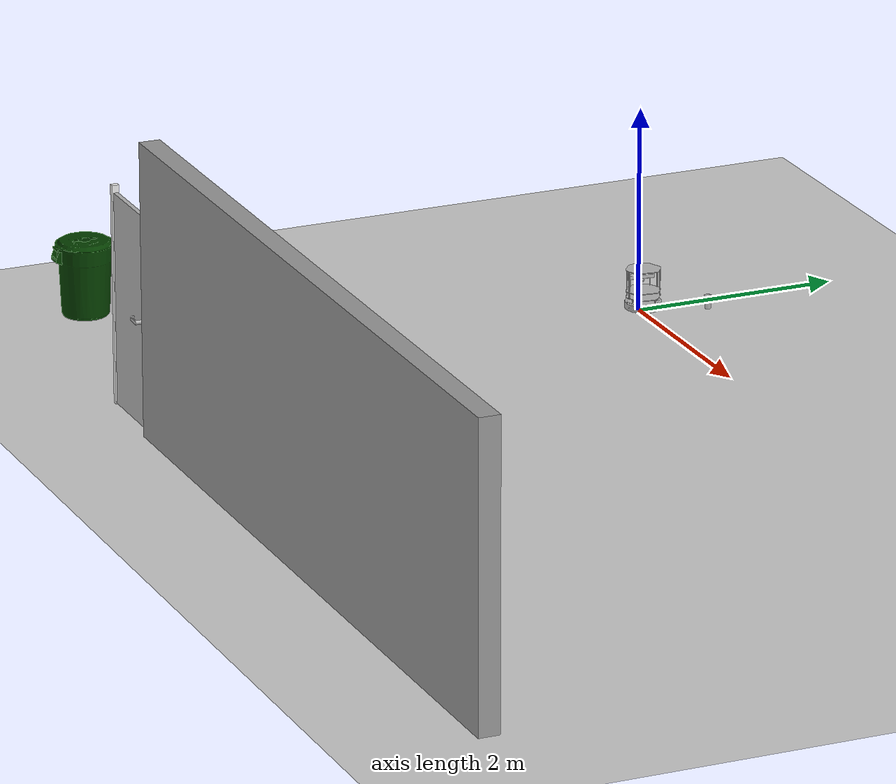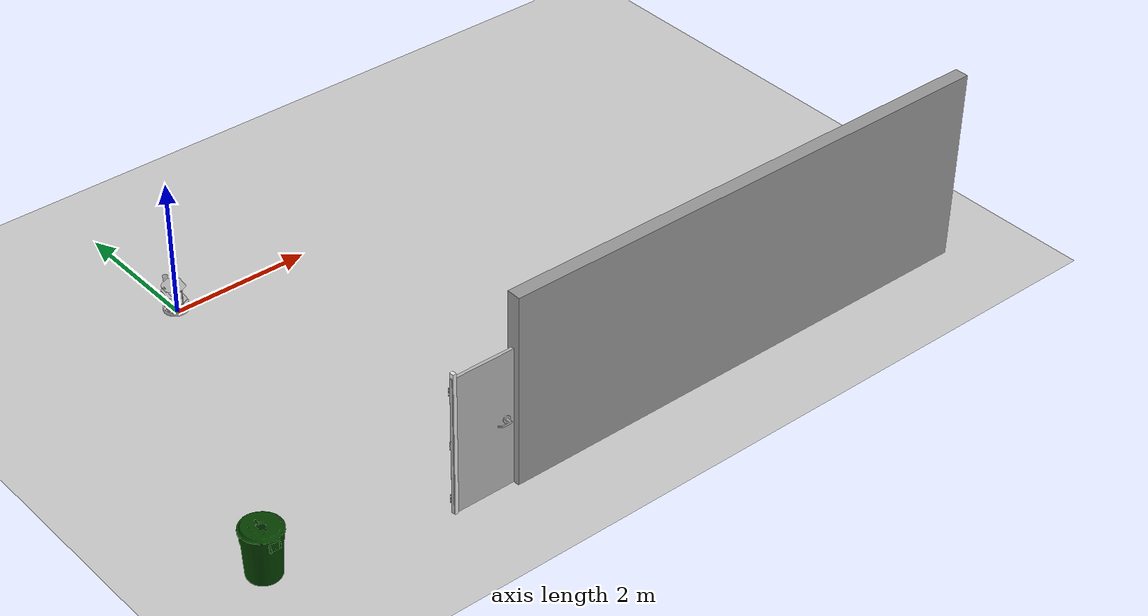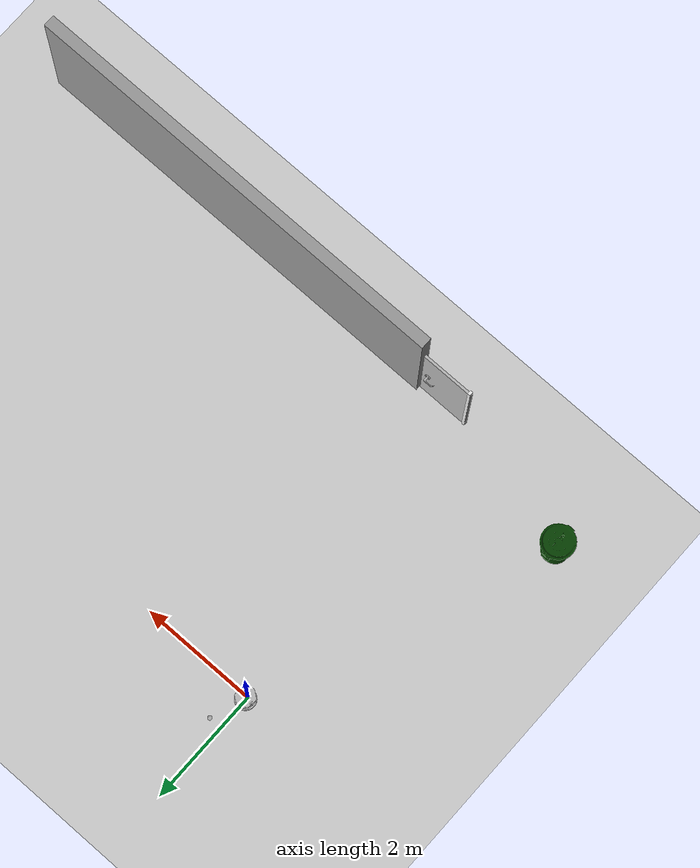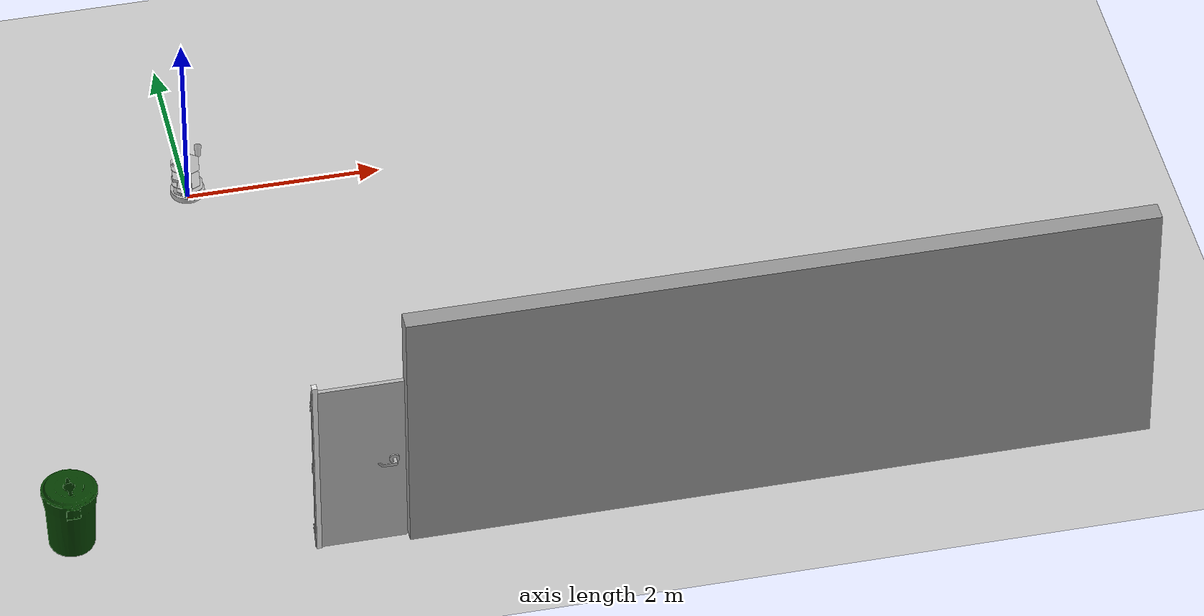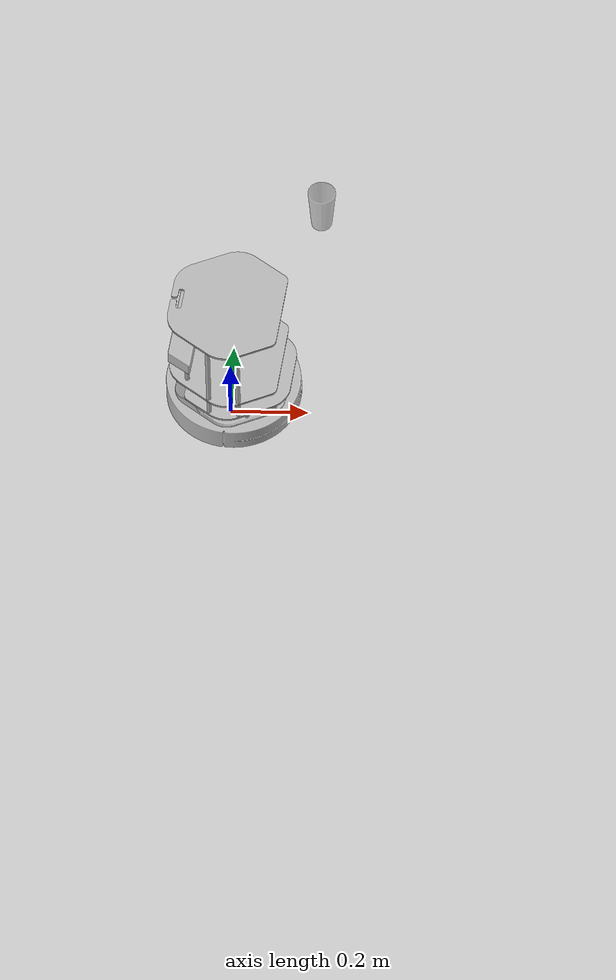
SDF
<sdf version="1.6">
 <world name="default">
  <light name="sun" type="directional">
   <pose>0 0 10 0 -0 0</pose>
   <diffuse>0.8 0.8 0.8 1</diffuse>
   <specular>0.1 0.1 0.1 1</specular>
   <attenuation>
    <range>1000</range>
    <constant>0.9</constant>
    <linear>0.01</linear>
    <quadratic>0.001</quadratic>
   </attenuation>
   <direction>-0.5 0.5 -1</direction>
  </light>
  <model name="ground_plane">
   <static>1</static>
   <link name="link">
    <collision name="collision">
     <geometry><plane><normal>0 0 1</normal><size>100 100</size></plane></geometry>
     <surface><friction><ode><mu>100</mu><mu2>50</mu2></ode></friction></surface>
    </collision>
    <visual name="visual">
     <cast_shadows>0</cast_shadows>
     <geometry><plane><normal>0 0 1</normal><size>100 100</size></plane></geometry>
     <material>
      <script><uri>file://media/materials/scripts/gazebo.material</uri><name>Gazebo/Grey</name></script>
     </material>
    </visual>
   </link>
  </model>
  <physics name="default_physics" default="0" type="ode">
   <max_step_size>0.01</max_step_size>
   <real_time_factor>1</real_time_factor>
   <real_time_update_rate>100</real_time_update_rate>
  </physics>
  <gravity>0 0 -9.8</gravity>
  <magnetic_field>6e-06 2.3e-05 -4.2e-05</magnetic_field>
  <atmosphere type="adiabatic"/>
  <scene><ambient>0.4 0.4 0.4 1</ambient><background>0.7 0.7 0.7 1</background><shadows>1</shadows></scene>
  <spherical_coordinates>
   <surface_model>EARTH_WGS84</surface_model>
   <latitude_deg>0</latitude_deg>
   <longitude_deg>0</longitude_deg>
   <elevation>0</elevation>
   <heading_deg>0</heading_deg>
  </spherical_coordinates>
  <model name="mobile_base">
   <link name="base_footprint">
    <inertial>
     <pose>-0.009496 1.3e-05 0.135573 0 -0 0</pose>
     <mass>4.9213</mass>
     <inertia>
      <ixx>0.142129</ixx>
      <ixy>-4.09257e-06</ixy>
      <ixz>0.0154899</ixz>
      <iyy>0.140784</iyy>
      <iyz>6.52071e-06</iyz>
      <izz>0.0801071</izz>
     </inertia>
    </inertial>
    <collision name="base_footprint_fixed_joint_lump__base_collision">
     <pose>0 0 0.06969 0 -0 0</pose>
     <geometry><cylinder><length>0.10938</length><radius>0.178</radius></cylinder></geometry>
    </collision>
    <collision name="base_footprint_fixed_joint_lump__camera_link_collision_1">
     <pose>-0.118 0 0.2812 0 -0 0</pose>
     <geometry><box><size>0.07271 0.27794 0.073</size></box></geometry>
    </collision>
    <collision name="base_footprint_fixed_joint_lump__caster_back_link_collision_2">
     <pose>-0.135 0 0.0192 -1.5708 0 0</pose>
     <geometry><cylinder><length>0.0176</length><radius>0.017</radius></cylinder></geometry>
     <surface>
      <contact><ode><kp>1e+06</kp><kd>100</kd><max_vel>1</max_vel><min_depth>0.001</min_depth></ode></contact>
      <friction><ode><mu>0</mu><mu2>0</mu2></ode></friction>
     </surface>
    </collision>
    <collision name="base_footprint_fixed_joint_lump__caster_front_link_collision_3">
     <pose>0.115 0 0.0172 -1.5708 0 0</pose>
     <geometry><cylinder><length>0.0176</length><radius>0.017</radius></cylinder></geometry>
     <surface>
      <contact><ode><kp>1e+06</kp><kd>100</kd><max_vel>1</max_vel><min_depth>0.001</min_depth></ode></contact>
      <friction><ode><mu>0</mu><mu2>0</mu2></ode></friction>
     </surface>
    </collision>
    <collision name="base_footprint_fixed_joint_lump__plate_bottom_link_collision_4">
     <pose>0 0 0.1408 0 -0 0</pose>
     <geometry><cylinder><length>0.006</length><radius>0.17</radius></cylinder></geometry>
    </collision>
    <collision name="base_footprint_fixed_joint_lump__plate_middle_link_collision_5">
     <pose>0 0 0.1976 0 -0 0</pose>
     <geometry><cylinder><length>0.006</length><radius>0.17</radius></cylinder></geometry>
    </collision>
    <collision name="base_footprint_fixed_joint_lump__plate_top_link_collision_6">
     <pose>0 0 0.4068 0 -0 0</pose>
     <geometry><cylinder><length>0.006</length><radius>0.17</radius></cylinder></geometry>
    </collision>
    <collision name="base_footprint_fixed_joint_lump__pole_bottom_0_link_collision_7">
     <pose>0.12 0.082 0.113 0 -0 0</pose>
     <geometry><cylinder><length>0.0492</length><radius>0.006</radius></cylinder></geometry>
    </collision>
    <collision name="base_footprint_fixed_joint_lump__pole_bottom_1_link_collision_8">
     <pose>0.055 0.12 0.113 0 -0 0</pose>
     <geometry><cylinder><length>0.0492</length><radius>0.006</radius></cylinder></geometry>
    </collision>
    <collision name="base_footprint_fixed_joint_lump__pole_bottom_2_link_collision_9">
     <pose>-0.055 0.12 0.113 0 -0 0</pose>
     <geometry><cylinder><length>0.0492</length><radius>0.006</radius></cylinder></geometry>
    </collision>
    <collision name="base_footprint_fixed_joint_lump__pole_bottom_3_link_collision_10">
     <pose>0.12 -0.082 0.113 0 -0 0</pose>
     <geometry><cylinder><length>0.0492</length><radius>0.006</radius></cylinder></geometry>
    </collision>
    <collision name="base_footprint_fixed_joint_lump__pole_bottom_4_link_collision_11">
     <pose>0.055 -0.12 0.113 0 -0 0</pose>
     <geometry><cylinder><length>0.0492</length><radius>0.006</radius></cylinder></geometry>
    </collision>
    <collision name="base_footprint_fixed_joint_lump__pole_bottom_5_link_collision_12">
     <pose>-0.055 -0.12 0.113 0 -0 0</pose>
     <geometry><cylinder><length>0.0492</length><radius>0.006</radius></cylinder></geometry>
    </collision>
    <collision name="base_footprint_fixed_joint_lump__pole_kinect_0_link_collision_13">
     <pose>-0.1024 0.098 0.2474 0 -0 0</pose>
     <geometry><cylinder><length>0.0936</length><radius>0.006</radius></cylinder></geometry>
    </collision>
    <collision name="base_footprint_fixed_joint_lump__pole_kinect_1_link_collision_14">
     <pose>-0.1024 -0.098 0.2474 0 -0 0</pose>
     <geometry><cylinder><length>0.0936</length><radius>0.006</radius></cylinder></geometry>
    </collision>
    <collision name="base_footprint_fixed_joint_lump__pole_middle_0_link_collision_15">
     <pose>0.0381 0.1505 0.1742 0 -0 0</pose>
     <geometry><cylinder><length>0.0608</length><radius>0.006</radius></cylinder></geometry>
    </collision>
    <collision name="base_footprint_fixed_joint_lump__pole_middle_1_link_collision_16">
     <pose>0.0381 -0.1505 0.1742 0 -0 0</pose>
     <geometry><cylinder><length>0.0608</length><radius>0.006</radius></cylinder></geometry>
    </collision>
    <collision name="base_footprint_fixed_joint_lump__pole_middle_2_link_collision_17">
     <pose>-0.0381 0.1505 0.1742 0 -0 0</pose>
     <geometry><cylinder><length>0.0608</length><radius>0.006</radius></cylinder></geometry>
    </collision>
    <collision name="base_footprint_fixed_joint_lump__pole_middle_3_link_collision_18">
     <pose>-0.0381 -0.1505 0.1742 0 -0 0</pose>
     <geometry><cylinder><length>0.0608</length><radius>0.006</radius></cylinder></geometry>
    </collision>
    <collision name="base_footprint_fixed_joint_lump__pole_top_0_link_collision_19">
     <pose>0.0381 0.1505 0.3022 0 -0 0</pose>
     <geometry><cylinder><length>0.2032</length><radius>0.006</radius></cylinder></geometry>
    </collision>
    <collision name="base_footprint_fixed_joint_lump__pole_top_1_link_collision_20">
     <pose>0.0381 -0.1505 0.3022 0 -0 0</pose>
     <geometry><cylinder><length>0.2032</length><radius>0.006</radius></cylinder></geometry>
    </collision>
    <collision name="base_footprint_fixed_joint_lump__pole_top_2_link_collision_21">
     <pose>-0.0381 0.1505 0.3022 0 -0 0</pose>
     <geometry><cylinder><length>0.2032</length><radius>0.006</radius></cylinder></geometry>
    </collision>
    <collision name="base_footprint_fixed_joint_lump__pole_top_3_link_collision_22">
     <pose>-0.0381 -0.1505 0.3022 0 -0 0</pose>
     <geometry><cylinder><length>0.2032</length><radius>0.006</radius></cylinder></geometry>
    </collision>
    <visual name="base_footprint_fixed_joint_lump__base_link_visual">
     <pose>0.001 0 0.06219 0 -0 0</pose>
     <geometry>
      <mesh><scale>1 1 1</scale><uri>/opt/ros/kinetic/share/kobuki_description/meshes/main_body.dae</uri></mesh>
     </geometry>
     <material><script><uri>__default__</uri><name>__default__</name></script></material>
    </visual>
    <visual name="base_footprint_fixed_joint_lump__camera_link_visual_1">
     <pose>-0.118 0 0.2812 0 -0 1.5708</pose>
     <geometry>
      <mesh>
       <scale>1 1 1</scale>
       <uri>/opt/ros/kinetic/share/turtlebot_description/meshes/sensors/kinect.dae</uri>
      </mesh>
     </geometry>
     <material><script><uri>__default__</uri><name>__default__</name></script></material>
    </visual>
    <visual name="base_footprint_fixed_joint_lump__plate_bottom_link_visual_2">
     <pose>0.02364 0 0.1408 0 -0 0</pose>
     <geometry>
      <mesh>
       <scale>1 1 1</scale>
       <uri>/opt/ros/kinetic/share/turtlebot_description/meshes/stacks/hexagons/plate_bottom.dae</uri>
      </mesh>
     </geometry>
    </visual>
    <visual name="base_footprint_fixed_joint_lump__plate_middle_link_visual_3">
     <pose>-0.01364 0 0.1976 0 -0 0</pose>
     <geometry>
      <mesh>
       <scale>1 1 1</scale>
       <uri>/opt/ros/kinetic/share/turtlebot_description/meshes/stacks/hexagons/plate_middle.dae</uri>
      </mesh>
     </geometry>
    </visual>
    <visual name="base_footprint_fixed_joint_lump__plate_top_link_visual_4">
     <pose>-0.01364 0 0.4068 0 -0 0</pose>
     <geometry>
      <mesh>
       <scale>1 1 1</scale>
       <uri>/opt/ros/kinetic/share/turtlebot_description/meshes/stacks/hexagons/plate_top.dae</uri>
      </mesh>
     </geometry>
    </visual>
    <visual name="base_footprint_fixed_joint_lump__pole_bottom_0_link_visual_5">
     <pose>0.12 0.082 0.113 0 -0 0</pose>
     <geometry>
      <mesh>
       <scale>1 1 1</scale>
       <uri>/opt/ros/kinetic/share/turtlebot_description/meshes/stacks/hexagons/pole_bottom.dae</uri>
      </mesh>
     </geometry>
    </visual>
    <visual name="base_footprint_fixed_joint_lump__pole_bottom_1_link_visual_6">
     <pose>0.055 0.12 0.113 0 -0 0</pose>
     <geometry>
      <mesh>
       <scale>1 1 1</scale>
       <uri>/opt/ros/kinetic/share/turtlebot_description/meshes/stacks/hexagons/pole_bottom.dae</uri>
      </mesh>
     </geometry>
    </visual>
    <visual name="base_footprint_fixed_joint_lump__pole_bottom_2_link_visual_7">
     <pose>-0.055 0.12 0.113 0 -0 0</pose>
     <geometry>
      <mesh>
       <scale>1 1 1</scale>
       <uri>/opt/ros/kinetic/share/turtlebot_description/meshes/stacks/hexagons/pole_bottom.dae</uri>
      </mesh>
     </geometry>
    </visual>
    <visual name="base_footprint_fixed_joint_lump__pole_bottom_3_link_visual_8">
     <pose>0.12 -0.082 0.113 0 -0 0</pose>
     <geometry>
      <mesh>
       <scale>1 1 1</scale>
       <uri>/opt/ros/kinetic/share/turtlebot_description/meshes/stacks/hexagons/pole_bottom.dae</uri>
      </mesh>
     </geometry>
    </visual>
    <visual name="base_footprint_fixed_joint_lump__pole_bottom_4_link_visual_9">
     <pose>0.055 -0.12 0.113 0 -0 0</pose>
     <geometry>
      <mesh>
       <scale>1 1 1</scale>
       <uri>/opt/ros/kinetic/share/turtlebot_description/meshes/stacks/hexagons/pole_bottom.dae</uri>
      </mesh>
     </geometry>
    </visual>
    <visual name="base_footprint_fixed_joint_lump__pole_bottom_5_link_visual_10">
     <pose>-0.055 -0.12 0.113 0 -0 0</pose>
     <geometry>
      <mesh>
       <scale>1 1 1</scale>
       <uri>/opt/ros/kinetic/share/turtlebot_description/meshes/stacks/hexagons/pole_bottom.dae</uri>
      </mesh>
     </geometry>
    </visual>
    <visual name="base_footprint_fixed_joint_lump__pole_kinect_0_link_visual_11">
     <pose>-0.1024 0.098 0.2374 0 -0 0</pose>
     <geometry>
      <mesh>
       <scale>1 1 1</scale>
       <uri>/opt/ros/kinetic/share/turtlebot_description/meshes/sensors/sensor_pole.dae</uri>
      </mesh>
     </geometry>
    </visual>
    <visual name="base_footprint_fixed_joint_lump__pole_kinect_1_link_visual_12">
     <pose>-0.1024 -0.098 0.2374 0 -0 0</pose>
     <geometry>
      <mesh>
       <scale>1 1 1</scale>
       <uri>/opt/ros/kinetic/share/turtlebot_description/meshes/sensors/sensor_pole.dae</uri>
      </mesh>
     </geometry>
    </visual>
    <visual name="base_footprint_fixed_joint_lump__pole_middle_0_link_visual_13">
     <pose>0.0381 0.1505 0.1742 3.14159 -0 3.14159</pose>
     <geometry>
      <mesh>
       <scale>1 1 1</scale>
       <uri>/opt/ros/kinetic/share/turtlebot_description/meshes/stacks/hexagons/pole_middle.dae</uri>
      </mesh>
     </geometry>
    </visual>
    <visual name="base_footprint_fixed_joint_lump__pole_middle_1_link_visual_14">
     <pose>0.0381 -0.1505 0.1742 3.14159 -0 3.14159</pose>
     <geometry>
      <mesh>
       <scale>1 1 1</scale>
       <uri>/opt/ros/kinetic/share/turtlebot_description/meshes/stacks/hexagons/pole_middle.dae</uri>
      </mesh>
     </geometry>
    </visual>
    <visual name="base_footprint_fixed_joint_lump__pole_middle_2_link_visual_15">
     <pose>-0.0381 0.1505 0.1742 3.14159 -0 3.14159</pose>
     <geometry>
      <mesh>
       <scale>1 1 1</scale>
       <uri>/opt/ros/kinetic/share/turtlebot_description/meshes/stacks/hexagons/pole_middle.dae</uri>
      </mesh>
     </geometry>
    </visual>
    <visual name="base_footprint_fixed_joint_lump__pole_middle_3_link_visual_16">
     <pose>-0.0381 -0.1505 0.1742 3.14159 -0 3.14159</pose>
     <geometry>
      <mesh>
       <scale>1 1 1</scale>
       <uri>/opt/ros/kinetic/share/turtlebot_description/meshes/stacks/hexagons/pole_middle.dae</uri>
      </mesh>
     </geometry>
    </visual>
    <visual name="base_footprint_fixed_joint_lump__pole_top_0_link_visual_17">
     <pose>0.0381 0.1505 0.3022 0 -0 0</pose>
     <geometry>
      <mesh>
       <scale>1 1 1</scale>
       <uri>/opt/ros/kinetic/share/turtlebot_description/meshes/stacks/hexagons/pole_top.dae</uri>
      </mesh>
     </geometry>
    </visual>
    <visual name="base_footprint_fixed_joint_lump__pole_top_1_link_visual_18">
     <pose>0.0381 -0.1505 0.3022 0 -0 0</pose>
     <geometry>
      <mesh>
       <scale>1 1 1</scale>
       <uri>/opt/ros/kinetic/share/turtlebot_description/meshes/stacks/hexagons/pole_top.dae</uri>
      </mesh>
     </geometry>
    </visual>
    <visual name="base_footprint_fixed_joint_lump__pole_top_2_link_visual_19">
     <pose>-0.0381 0.1505 0.3022 0 -0 0</pose>
     <geometry>
      <mesh>
       <scale>1 1 1</scale>
       <uri>/opt/ros/kinetic/share/turtlebot_description/meshes/stacks/hexagons/pole_top.dae</uri>
      </mesh>
     </geometry>
    </visual>
    <visual name="base_footprint_fixed_joint_lump__pole_top_3_link_visual_20">
     <pose>-0.0381 -0.1505 0.3022 0 -0 0</pose>
     <geometry>
      <mesh>
       <scale>1 1 1</scale>
       <uri>/opt/ros/kinetic/share/turtlebot_description/meshes/stacks/hexagons/pole_top.dae</uri>
      </mesh>
     </geometry>
    </visual>
    <sensor name="bumpers" type="contact">
     <always_on>1</always_on>
     <update_rate>50</update_rate>
     <visualize>1</visualize>
     <contact>
      <collision>base_footprint_fixed_joint_lump__base_collision</collision>
      <topic>__default_topic__</topic>
     </contact>
     <pose>0 0 0.0102 0 -0 0</pose>
    </sensor>
    <sensor name="camera" type="depth">
     <always_on>1</always_on>
     <update_rate>20</update_rate>
     <camera name="__default__">
      <horizontal_fov>1.0472</horizontal_fov>
      <image><format>B8G8R8</format><width>640</width><height>480</height></image>
      <clip><near>0.05</near><far>8</far></clip>
     </camera>
     <plugin name="kinect_camera_controller" filename="libgazebo_ros_openni_kinect.so">
      <cameraName>camera</cameraName>
      <alwaysOn>true</alwaysOn>
      <updateRate>10</updateRate>
      <imageTopicName>rgb/image_raw</imageTopicName>
      <depthImageTopicName>depth/image_raw</depthImageTopicName>
      <pointCloudTopicName>depth/points</pointCloudTopicName>
      <cameraInfoTopicName>rgb/camera_info</cameraInfoTopicName>
      <depthImageCameraInfoTopicName>depth/camera_info</depthImageCameraInfoTopicName>
      <frameName>camera_depth_optical_frame</frameName>
      <baseline>0.1</baseline>
      <distortion_k1>0.0</distortion_k1>
      <distortion_k2>0.0</distortion_k2>
      <distortion_k3>0.0</distortion_k3>
      <distortion_t1>0.0</distortion_t1>
      <distortion_t2>0.0</distortion_t2>
      <pointCloudCutoff>0.4</pointCloudCutoff>
      <robotNamespace>/</robotNamespace>
     </plugin>
     <pose>-0.118 0 0.2812 0 -0 0</pose>
    </sensor>
    <sensor name="cliff_sensor_front" type="ray">
     <always_on>1</always_on>
     <update_rate>50</update_rate>
     <visualize>1</visualize>
     <ray>
      <scan>
       <horizontal>
        <samples>50</samples>
        <resolution>1</resolution>
        <min_angle>-0.0436</min_angle>
        <max_angle>0.0436</max_angle>
       </horizontal>
       <vertical><samples>1</samples><min_angle>0</min_angle><max_angle>0</max_angle></vertical>
      </scan>
      <range><min>0.01</min><max>0.15</max><resolution>1</resolution></range>
     </ray>
     <pose>0.156 0 0.0316 3.14159 1.57079 3.14159</pose>
    </sensor>
    <sensor name="cliff_sensor_left" type="ray">
     <always_on>1</always_on>
     <update_rate>50</update_rate>
     <visualize>1</visualize>
     <ray>
      <scan>
       <horizontal>
        <samples>50</samples>
        <resolution>1</resolution>
        <min_angle>-0.0436</min_angle>
        <max_angle>0.0436</max_angle>
       </horizontal>
       <vertical><samples>1</samples><min_angle>0</min_angle><max_angle>0</max_angle></vertical>
      </scan>
      <range><min>0.01</min><max>0.15</max><resolution>1</resolution></range>
     </ray>
     <pose>0.08734 0.13601 0.0316 3.14159 1.57079 3.14159</pose>
    </sensor>
    <sensor name="cliff_sensor_right" type="ray">
     <always_on>1</always_on>
     <update_rate>50</update_rate>
     <visualize>1</visualize>
     <ray>
      <scan>
       <horizontal>
        <samples>50</samples>
        <resolution>1</resolution>
        <min_angle>-0.0436</min_angle>
        <max_angle>0.0436</max_angle>
       </horizontal>
       <vertical><samples>1</samples><min_angle>0</min_angle><max_angle>0</max_angle></vertical>
      </scan>
      <range><min>0.01</min><max>0.15</max><resolution>1</resolution></range>
     </ray>
     <pose>0.085 -0.13601 0.0316 3.14159 1.57079 3.14159</pose>
    </sensor>
    <sensor name="imu" type="imu">
     <always_on>1</always_on>
     <update_rate>50</update_rate>
     <visualize>0</visualize>
     <imu>
      <angular_velocity>
       <x>
        <noise type="gaussian">
         <mean>0</mean>
         <stddev>1.96e-06</stddev>
         <bias_mean>0</bias_mean>
         <bias_stddev>0</bias_stddev>
        </noise>
       </x>
       <y>
        <noise type="gaussian">
         <mean>0</mean>
         <stddev>1.96e-06</stddev>
         <bias_mean>0</bias_mean>
         <bias_stddev>0</bias_stddev>
        </noise>
       </y>
       <z>
        <noise type="gaussian">
         <mean>0</mean>
         <stddev>1.96e-06</stddev>
         <bias_mean>0</bias_mean>
         <bias_stddev>0</bias_stddev>
        </noise>
       </z>
      </angular_velocity>
      <linear_acceleration>
       <x>
        <noise type="gaussian">
         <mean>0</mean>
         <stddev>0.017</stddev>
         <bias_mean>0.1</bias_mean>
         <bias_stddev>0.001</bias_stddev>
        </noise>
       </x>
       <y>
        <noise type="gaussian">
         <mean>0</mean>
         <stddev>0.017</stddev>
         <bias_mean>0.1</bias_mean>
         <bias_stddev>0.001</bias_stddev>
        </noise>
       </y>
       <z>
        <noise type="gaussian">
         <mean>0</mean>
         <stddev>0.017</stddev>
         <bias_mean>0.1</bias_mean>
         <bias_stddev>0.001</bias_stddev>
        </noise>
       </z>
      </linear_acceleration>
     </imu>
     <pose>0.056 0.062 0.0304 0 -0 0</pose>
    </sensor>
   </link>
   <link name="wheel_left_link">
    <pose>0 0.115 0.0352 -1.5708 0 0</pose>
    <inertial>
     <mass>0.01</mass>
     <inertia><ixx>0.001</ixx><ixy>0</ixy><ixz>0</ixz><iyy>0.001</iyy><iyz>0</iyz><izz>0.001</izz></inertia>
    </inertial>
    <collision name="wheel_left_link_collision">
     <geometry><cylinder><length>0.0206</length><radius>0.0352</radius></cylinder></geometry>
     <surface>
      <contact><ode><kp>1e+06</kp><kd>100</kd><max_vel>1</max_vel><min_depth>0.001</min_depth></ode></contact>
      <friction><ode><mu>1</mu><mu2>1</mu2></ode></friction>
     </surface>
    </collision>
    <visual name="wheel_left_link_visual">
     <geometry>
      <mesh><scale>1 1 1</scale><uri>/opt/ros/kinetic/share/kobuki_description/meshes/wheel.dae</uri></mesh>
     </geometry>
     <material><script><uri>__default__</uri><name>__default__</name></script></material>
    </visual>
   </link>
   <joint name="wheel_left_joint" type="revolute">
    <child>wheel_left_link</child>
    <parent>base_footprint</parent>
    <axis>
     <xyz>0 1 0</xyz>
     <limit><lower>-1e+16</lower><upper>1e+16</upper></limit>
     <dynamics><spring_reference>0</spring_reference><spring_stiffness>0</spring_stiffness></dynamics>
     <use_parent_model_frame>1</use_parent_model_frame>
    </axis>
   </joint>
   <link name="wheel_right_link">
    <pose>0 -0.115 0.0352 -1.5708 0 0</pose>
    <inertial>
     <mass>0.01</mass>
     <inertia><ixx>0.001</ixx><ixy>0</ixy><ixz>0</ixz><iyy>0.001</iyy><iyz>0</iyz><izz>0.001</izz></inertia>
    </inertial>
    <collision name="wheel_right_link_collision">
     <geometry><cylinder><length>0.0206</length><radius>0.035</radius></cylinder></geometry>
     <surface>
      <contact><ode><kp>1e+06</kp><kd>100</kd><max_vel>1</max_vel><min_depth>0.001</min_depth></ode></contact>
      <friction><ode><mu>1</mu><mu2>1</mu2></ode></friction>
     </surface>
    </collision>
    <visual name="wheel_right_link_visual">
     <geometry>
      <mesh><scale>1 1 1</scale><uri>/opt/ros/kinetic/share/kobuki_description/meshes/wheel.dae</uri></mesh>
     </geometry>
     <material><script><uri>__default__</uri><name>__default__</name></script></material>
    </visual>
   </link>
   <joint name="wheel_right_joint" type="revolute">
    <child>wheel_right_link</child>
    <parent>base_footprint</parent>
    <axis>
     <xyz>0 1 0</xyz>
     <limit><lower>-1e+16</lower><upper>1e+16</upper></limit>
     <dynamics><spring_reference>0</spring_reference><spring_stiffness>0</spring_stiffness></dynamics>
     <use_parent_model_frame>1</use_parent_model_frame>
    </axis>
   </joint>
   <static>0</static>
   <plugin name="kobuki_controller" filename="libgazebo_ros_kobuki.so">
    <publish_tf>1</publish_tf>
    <left_wheel_joint_name>wheel_left_joint</left_wheel_joint_name>
    <right_wheel_joint_name>wheel_right_joint</right_wheel_joint_name>
    <wheel_separation>.230</wheel_separation>
    <wheel_diameter>0.070</wheel_diameter>
    <torque>1.0</torque>
    <velocity_command_timeout>0.6</velocity_command_timeout>
    <cliff_sensor_left_name>cliff_sensor_left</cliff_sensor_left_name>
    <cliff_sensor_center_name>cliff_sensor_front</cliff_sensor_center_name>
    <cliff_sensor_right_name>cliff_sensor_right</cliff_sensor_right_name>
    <cliff_detection_threshold>0.04</cliff_detection_threshold>
    <bumper_name>bumpers</bumper_name>
    <imu_name>imu</imu_name>
    <robotNamespace>/</robotNamespace>
   </plugin>
   <pose>0.006226 0.042976 -0.001131 4e-05 -0.008 -0.125539</pose>
  </model>
  <model name="drc_practice_hinged_door">
   <link name="frame">
    <pose>0.06 -0.0005 0 0 -0 0</pose>
    <inertial>
     <pose>-0.025145 -0.03429 1.0541 0 -0 0</pose>
     <mass>19</mass>
     <inertia>
      <ixx>7.04458</ixx>
      <ixy>0</ixy>
      <ixz>0</ixz>
      <iyy>7.04114</iyy>
      <iyz>0</iyz>
      <izz>0.0114511</izz>
     </inertia>
    </inertial>
    <collision name="collision_2">
     <pose>-0.025145 -0.03429 1.0541 0 -0 0</pose>
     <geometry><box><size>0.05029 0.06858 2.1082</size></box></geometry>
    </collision>
    <visual name="visual">
     <pose>-0.025145 -0.03429 1.0541 0 -0 0</pose>
     <geometry><box><size>0.05029 0.06858 2.1082</size></box></geometry>
     <material>
      <script><uri>file://media/materials/scripts/gazebo.material</uri><name>Gazebo/White</name></script>
     </material>
    </visual>
   </link>
   <link name="door">
    <pose>-0 0 2.04 3.14159 -0 0</pose>
    <inertial>
     <mass>41.3256</mass>
     <pose>0.4569 0.0349 1.016 0 -0 0</pose>
     <inertia><ixx>14.2263</ixx><ixy>0</ixy><ixz>0</ixz><iyy>17.099</iyy><iyz>0</iyz><izz>2.88626</izz></inertia>
    </inertial>
    <collision name="collision">
     <pose>0.4569 0.0349 1.016 0 -0 0</pose>
     <geometry><box><size>0.9144 0.04445 2.032</size></box></geometry>
    </collision>
    <visual name="visual">
     <pose>0 -0.06858 0 0 -0 0</pose>
     <geometry><mesh><uri>model://hinged_door/meshes/door.dae</uri><scale>1 1 1</scale></mesh></geometry>
    </visual>
   </link>
   <link name="handles">
    <pose>0.8144 0 1.05 3.14159 0.001593 3.14159</pose>
    <inertial>
     <pose>0 -0.035 0 0 -0 0</pose>
     <mass>2</mass>
     <inertia>
      <ixx>0.0110115</ixx>
      <ixy>-0</ixy>
      <ixz>-0.00647057</ixz>
      <iyy>0.0190181</iyy>
      <iyz>0</iyz>
      <izz>0.00824372</izz>
     </inertia>
    </inertial>
    <collision name="handle1_collision">
     <pose>0.015 -0.015 0 -1.57 0 0</pose>
     <geometry><mesh><uri>model://door_handle/meshes/handle.dae</uri><scale>1 1 1</scale></mesh></geometry>
    </collision>
    <visual name="handle1_visual">
     <pose>0.015 -0.015 0 -1.57 0 0</pose>
     <geometry><mesh><uri>model://door_handle/meshes/handle.dae</uri><scale>1 1 1</scale></mesh></geometry>
    </visual>
    <collision name="handle2_collision">
     <pose>0.015 -0.055 0 1.57 -0 0</pose>
     <geometry><mesh><uri>model://door_handle/meshes/handle.dae</uri><scale>1 1 1</scale></mesh></geometry>
    </collision>
    <visual name="handle2_visual">
     <pose>0.015 -0.055 0 1.57 -0 0</pose>
     <geometry><mesh><uri>model://door_handle/meshes/handle.dae</uri><scale>1 1 1</scale></mesh></geometry>
    </visual>
   </link>
   <joint name="handle" type="revolute">
    <parent>door</parent>
    <child>handles</child>
    <pose>0.015 0 0 0 -0 0</pose>
    <axis>
     <xyz>0 1 0</xyz>
     <limit><lower>-1.58</lower><upper>0</upper></limit>
     <dynamics>
      <damping>1</damping>
      <friction>10</friction>
      <spring_reference>0</spring_reference>
      <spring_stiffness>0</spring_stiffness>
     </dynamics>
     <use_parent_model_frame>1</use_parent_model_frame>
    </axis>
    <physics><ode><cfm_damping>1</cfm_damping><limit><cfm>0</cfm><erp>0.2</erp></limit></ode></physics>
   </joint>
   <joint name="hinge" type="revolute">
    <parent>frame</parent>
    <child>door</child>
    <axis>
     <xyz>0 0 1</xyz>
     <limit><lower>-1.58</lower><upper>0</upper></limit>
     <dynamics>
      <damping>1</damping>
      <friction>1</friction>
      <spring_reference>0</spring_reference>
      <spring_stiffness>0</spring_stiffness>
     </dynamics>
     <use_parent_model_frame>1</use_parent_model_frame>
    </axis>
    <physics><ode><cfm_damping>1</cfm_damping><limit><cfm>0</cfm><erp>0.2</erp></limit></ode></physics>
   </joint>
   <joint name="world_joint" type="revolute">
    <child>frame</child>
    <parent>world</parent>
    <axis>
     <limit><lower>0</lower><upper>0</upper></limit>
     <xyz>0 1 0</xyz>
     <dynamics>
      <damping>1</damping>
      <spring_reference>0</spring_reference>
      <spring_stiffness>0</spring_stiffness>
     </dynamics>
     <use_parent_model_frame>1</use_parent_model_frame>
    </axis>
    <physics><ode><cfm_damping>1</cfm_damping><limit><cfm>0</cfm><erp>0.2</erp></limit></ode></physics>
   </joint>
   <pose>0.306372 -5.36127 0 0 -1e-06 -3.1e-05</pose>
  </model>
  <model name="grey_wall">
   <static>1</static>
   <link name="link">
    <pose>0 0 1.4 0 -0 0</pose>
    <collision name="collision"><geometry><box><size>7.5 0.2 2.8</size></box></geometry></collision>
    <visual name="visual">
     <cast_shadows>0</cast_shadows>
     <geometry><box><size>7.5 0.2 2.8</size></box></geometry>
     <material>
      <script>
       <uri>model://grey_wall/materials/scripts</uri>
       <uri>model://grey_wall/materials/textures</uri>
       <name>vrc/grey_wall</name>
      </script>
     </material>
    </visual>
   </link>
   <pose>4.98156 -5.39865 0 0 -0 0</pose>
  </model>
  <model name="first_2015_trash_can">
   <link name="link">
    <inertial>
     <pose>0 0 0.3683 0 -0 0</pose>
     <mass>4.83076</mass>
     <inertia>
      <ixx>0.281534</ixx>
      <ixy>0</ixy>
      <ixz>0</ixz>
      <iyy>0.281534</iyy>
      <iyz>0</iyz>
      <izz>0.126223</izz>
     </inertia>
    </inertial>
    <visual name="visual">
     <geometry>
      <mesh><uri>model://first_2015_trash_can/meshes/trash_can.dae</uri><scale>1 1 1</scale></mesh>
     </geometry>
    </visual>
    <collision name="collision">
     <geometry>
      <mesh><uri>model://first_2015_trash_can/meshes/trash_can.dae</uri><scale>1 1 1</scale></mesh>
     </geometry>
    </collision>
   </link>
   <pose>-2.00705 -4.81641 -3.9e-05 0.000373 0.000123 -0.010675</pose>
  </model>
  <model name="coke_can">
   <link name="link">
    <inertial>
     <mass>0.39</mass>
     <inertia><ixx>0.00058</ixx><ixy>0</ixy><ixz>0</ixz><iyy>0.00058</iyy><iyz>0</iyz><izz>0.00019</izz></inertia>
    </inertial>
    <collision name="collision">
     <pose>0 0 -0.46 0 -0 0</pose>
     <geometry><mesh><uri>model://coke_can/meshes/coke_can.dae</uri><scale>1 1 1</scale></mesh></geometry>
    </collision>
    <visual name="visual">
     <pose>0 0 -0.46 0 -0 0</pose>
     <geometry><mesh><uri>model://coke_can/meshes/coke_can.dae</uri><scale>1 1 1</scale></mesh></geometry>
    </visual>
   </link>
   <pose>0.805575 0.020007 -0.004142 -0.042697 0.015335 -0.240089</pose>
  </model>
  <model name="plastic_cup">
   <link name="link">
    <pose>0 0 0.065 0 -0 0</pose>
    <inertial>
     <mass>0.0599</mass>
     <inertia>
      <ixx>0.000302896</ixx>
      <ixy>0</ixy>
      <ixz>0</ixz>
      <iyy>0.000302896</iyy>
      <iyz>0</iyz>
      <izz>3.28764e-05</izz>
     </inertia>
    </inertial>
    <collision name="collision">
     <geometry><mesh><uri>model://plastic_cup/meshes/plastic_cup.dae</uri><scale>1 1 1</scale></mesh></geometry>
     <surface>
      <contact>
       <poissons_ratio>0.35</poissons_ratio>
       <elastic_modulus>3.10264e+09</elastic_modulus>
       <ode><kp>100000</kp><kd>100</kd><max_vel>100</max_vel><min_depth>0.001</min_depth></ode>
      </contact>
      <friction>
       <torsional>
        <coefficient>1</coefficient>
        <use_patch_radius>0</use_patch_radius>
        <surface_radius>0.01</surface_radius>
       </torsional>
      </friction>
     </surface>
    </collision>
    <visual name="visual">
     <geometry><mesh><uri>model://plastic_cup/meshes/plastic_cup.dae</uri><scale>1 1 1</scale></mesh></geometry>
     <material>
      <script><uri>file://media/materials/scripts/gazebo.material</uri><name>Gazebo/GreyTransparent</name></script>
     </material>
    </visual>
   </link>
   <pose>0.217066 0.611655 0.007614 -0.000633 -0.001966 0.00475</pose>
  </model>
  <model name="coke_can_0">
   <link name="link">
    <inertial>
     <mass>0.39</mass>
     <inertia><ixx>0.00058</ixx><ixy>0</ixy><ixz>0</ixz><iyy>0.00058</iyy><iyz>0</iyz><izz>0.00019</izz></inertia>
    </inertial>
    <collision name="collision">
     <pose>0 0 -0.46 0 -0 0</pose>
     <geometry><mesh><uri>model://coke_can/meshes/coke_can.dae</uri><scale>1 1 1</scale></mesh></geometry>
    </collision>
    <visual name="visual">
     <pose>0 0 -0.46 0 -0 0</pose>
     <geometry><mesh><uri>model://coke_can/meshes/coke_can.dae</uri><scale>1 1 1</scale></mesh></geometry>
    </visual>
   </link>
   <pose>-0.163738 -0.742168 -0.004484 -0.036688 0.004416 -0.075321</pose>
  </model>
  <model name="coke_can_1">
   <link name="link">
    <inertial>
     <mass>0.39</mass>
     <inertia><ixx>0.00058</ixx><ixy>0</ixy><ixz>0</ixz><iyy>0.00058</iyy><iyz>0</iyz><izz>0.00019</izz></inertia>
    </inertial>
    <collision name="collision">
     <pose>0 0 -0.46 0 -0 0</pose>
     <geometry><mesh><uri>model://coke_can/meshes/coke_can.dae</uri><scale>1 1 1</scale></mesh></geometry>
    </collision>
    <visual name="visual">
     <pose>0 0 -0.46 0 -0 0</pose>
     <geometry><mesh><uri>model://coke_can/meshes/coke_can.dae</uri><scale>1 1 1</scale></mesh></geometry>
    </visual>
   </link>
   <pose>-0.431622 -0.973646 -0.004484 -0.036688 0.004416 -0.05942</pose>
  </model>
 </world>
</sdf>
